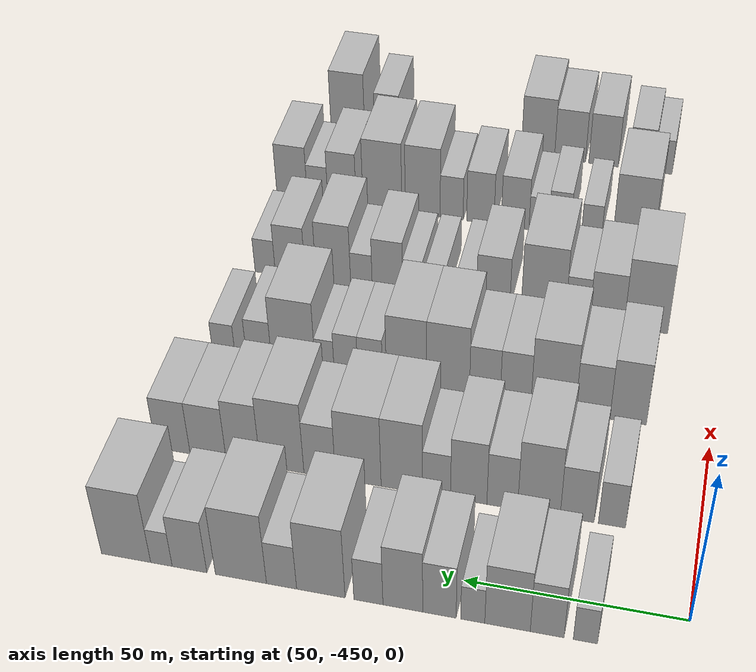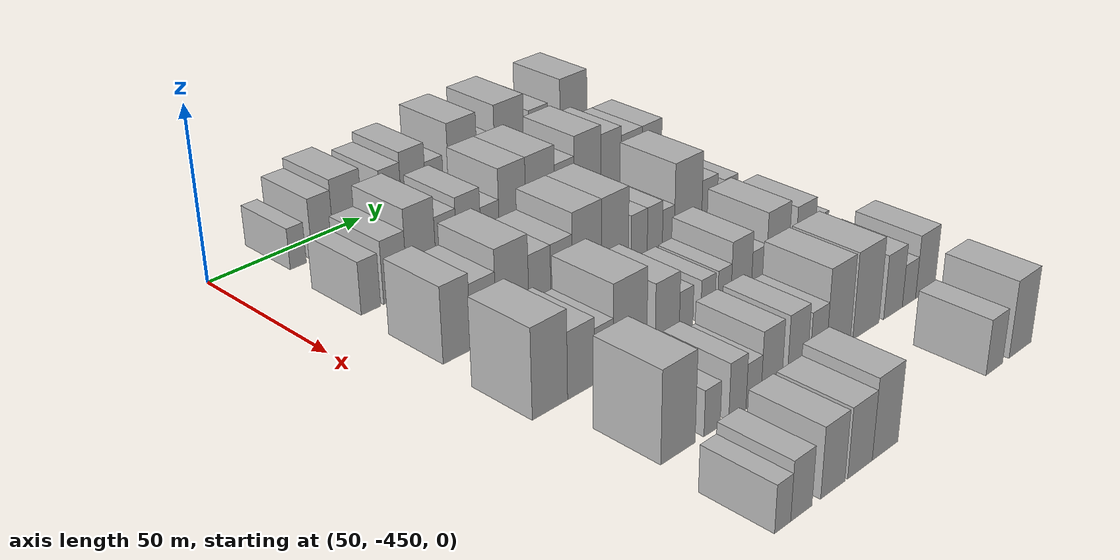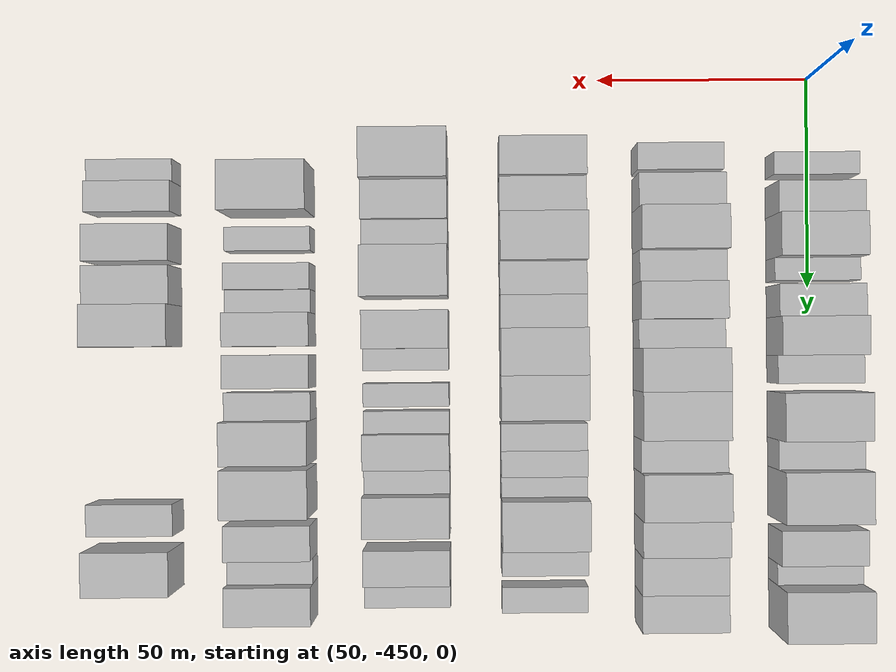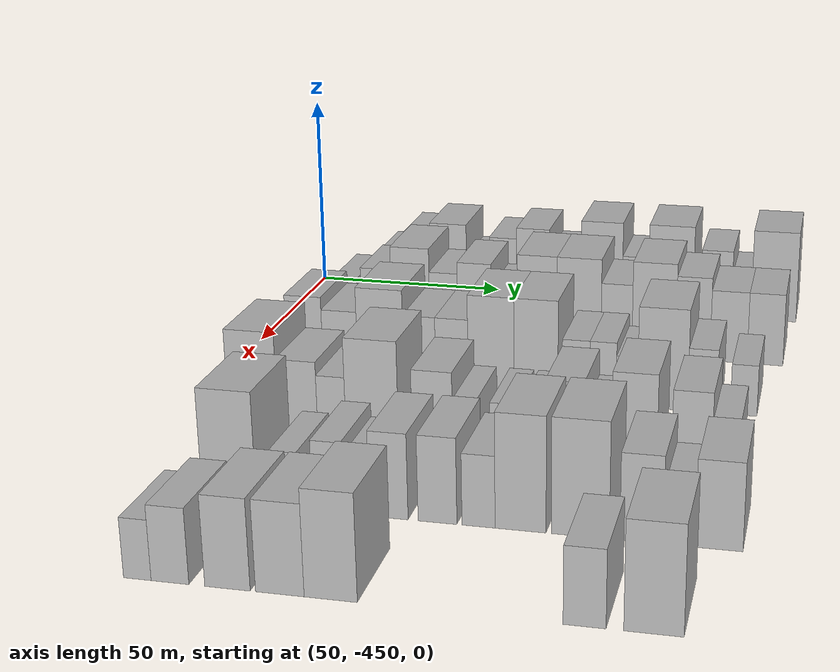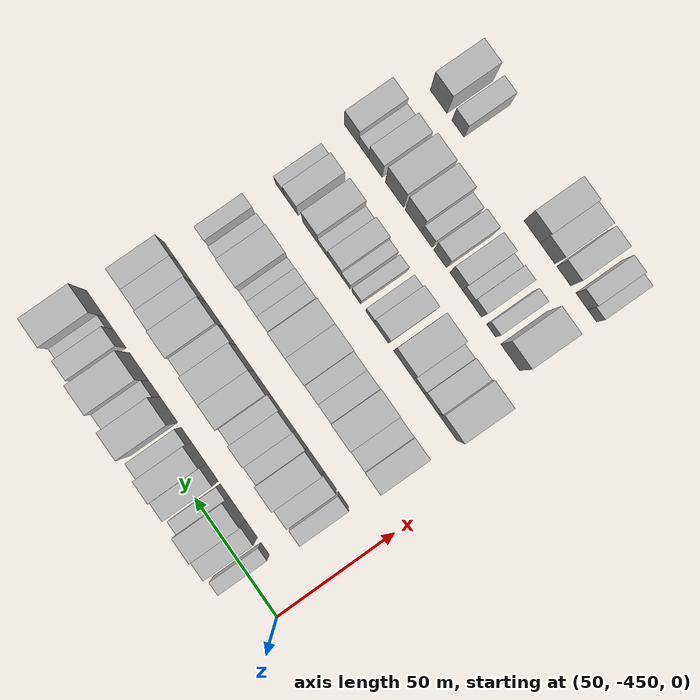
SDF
<sdf version="1.6">
 <world name="default">
  <model name="building_13">
   <static>1</static>
   <pose>50.0000 -428.5578 0 0.000000 0.000000 0.000000</pose>
   <link name="link">
    <pose>0 0 6.00 0 0 0</pose>
    <collision name="collision"><geometry><box><size>20.0000 5.2352 12.0000</size></box></geometry></collision>
    <visual name="visual">
     <cast_shadows>0</cast_shadows>
     <geometry><box><size>20.0000 5.2352 12.0000</size></box></geometry>
     <material>
      <script>
       <uri>model://HANNAS_wall/materials/scripts</uri>
       <uri>model://HANNAS_wall/materials/textures</uri>
       <name>vrc/HANNAS_wall</name>
      </script>
     </material>
    </visual>
   </link>
  </model>
  <model name="building_14">
   <static>1</static>
   <pose>50.0000 -420.2583 0 0.000000 0.000000 0.000000</pose>
   <link name="link">
    <pose>0 0 9.00 0 0 0</pose>
    <collision name="collision"><geometry><box><size>20.0000 7.3639 18.0000</size></box></geometry></collision>
    <visual name="visual">
     <cast_shadows>0</cast_shadows>
     <geometry><box><size>20.0000 7.3639 18.0000</size></box></geometry>
     <material>
      <script>
       <uri>model://HANNAS_wall/materials/scripts</uri>
       <uri>model://HANNAS_wall/materials/textures</uri>
       <name>vrc/HANNAS_wall</name>
      </script>
     </material>
    </visual>
   </link>
  </model>
  <model name="building_15">
   <static>1</static>
   <pose>50.0000 -411.5845 0 0.000000 0.000000 0.000000</pose>
   <link name="link">
    <pose>0 0 10.50 0 0 0</pose>
    <collision name="collision"><geometry><box><size>20.0000 9.9836 21.0000</size></box></geometry></collision>
    <visual name="visual">
     <cast_shadows>0</cast_shadows>
     <geometry><box><size>20.0000 9.9836 21.0000</size></box></geometry>
     <material>
      <script>
       <uri>model://HANNAS_wall/materials/scripts</uri>
       <uri>model://HANNAS_wall/materials/textures</uri>
       <name>vrc/HANNAS_wall</name>
      </script>
     </material>
    </visual>
   </link>
  </model>
  <model name="building_16">
   <static>1</static>
   <pose>50.0000 -403.9259 0 0.000000 0.000000 0.000000</pose>
   <link name="link">
    <pose>0 0 6.00 0 0 0</pose>
    <collision name="collision"><geometry><box><size>20.0000 5.3337 12.0000</size></box></geometry></collision>
    <visual name="visual">
     <cast_shadows>0</cast_shadows>
     <geometry><box><size>20.0000 5.3337 12.0000</size></box></geometry>
     <material>
      <script>
       <uri>model://HANNAS_wall/materials/scripts</uri>
       <uri>model://HANNAS_wall/materials/textures</uri>
       <name>vrc/HANNAS_wall</name>
      </script>
     </material>
    </visual>
   </link>
  </model>
  <model name="building_17">
   <static>1</static>
   <pose>50.0000 -396.5449 0 0.000000 0.000000 0.000000</pose>
   <link name="link">
    <pose>0 0 9.00 0 0 0</pose>
    <collision name="collision"><geometry><box><size>20.0000 7.4283 18.0000</size></box></geometry></collision>
    <visual name="visual">
     <cast_shadows>0</cast_shadows>
     <geometry><box><size>20.0000 7.4283 18.0000</size></box></geometry>
     <material>
      <script>
       <uri>model://HANNAS_wall/materials/scripts</uri>
       <uri>model://HANNAS_wall/materials/textures</uri>
       <name>vrc/HANNAS_wall</name>
      </script>
     </material>
    </visual>
   </link>
  </model>
  <model name="building_18">
   <static>1</static>
   <pose>50.0000 -388.3783 0 0.000000 0.000000 0.000000</pose>
   <link name="link">
    <pose>0 0 10.50 0 0 0</pose>
    <collision name="collision"><geometry><box><size>20.0000 8.9048 21.0000</size></box></geometry></collision>
    <visual name="visual">
     <cast_shadows>0</cast_shadows>
     <geometry><box><size>20.0000 8.9048 21.0000</size></box></geometry>
     <material>
      <script>
       <uri>model://HANNAS_wall/materials/scripts</uri>
       <uri>model://HANNAS_wall/materials/textures</uri>
       <name>vrc/HANNAS_wall</name>
      </script>
     </material>
    </visual>
   </link>
  </model>
  <model name="building_19">
   <static>1</static>
   <pose>50.0000 -380.6509 0 0.000000 0.000000 0.000000</pose>
   <link name="link">
    <pose>0 0 7.50 0 0 0</pose>
    <collision name="collision"><geometry><box><size>20.0000 6.5501 15.0000</size></box></geometry></collision>
    <visual name="visual">
     <cast_shadows>0</cast_shadows>
     <geometry><box><size>20.0000 6.5501 15.0000</size></box></geometry>
     <material>
      <script>
       <uri>model://HANNAS_wall/materials/scripts</uri>
       <uri>model://HANNAS_wall/materials/textures</uri>
       <name>vrc/HANNAS_wall</name>
      </script>
     </material>
    </visual>
   </link>
  </model>
  <model name="building_20">
   <static>1</static>
   <pose>50.0000 -369.8633 0 0.000000 0.000000 0.000000</pose>
   <link name="link">
    <pose>0 0 12.00 0 0 0</pose>
    <collision name="collision"><geometry><box><size>20.0000 11.0251 24.0000</size></box></geometry></collision>
    <visual name="visual">
     <cast_shadows>0</cast_shadows>
     <geometry><box><size>20.0000 11.0251 24.0000</size></box></geometry>
     <material>
      <script>
       <uri>model://HANNAS_wall/materials/scripts</uri>
       <uri>model://HANNAS_wall/materials/textures</uri>
       <name>vrc/HANNAS_wall</name>
      </script>
     </material>
    </visual>
   </link>
  </model>
  <model name="building_21">
   <static>1</static>
   <pose>50.0000 -360.8925 0 0.000000 0.000000 0.000000</pose>
   <link name="link">
    <pose>0 0 7.50 0 0 0</pose>
    <collision name="collision"><geometry><box><size>20.0000 6.9164 15.0000</size></box></geometry></collision>
    <visual name="visual">
     <cast_shadows>0</cast_shadows>
     <geometry><box><size>20.0000 6.9164 15.0000</size></box></geometry>
     <material>
      <script>
       <uri>model://HANNAS_wall/materials/scripts</uri>
       <uri>model://HANNAS_wall/materials/textures</uri>
       <name>vrc/HANNAS_wall</name>
      </script>
     </material>
    </visual>
   </link>
  </model>
  <model name="building_22">
   <static>1</static>
   <pose>50.0000 -351.5226 0 0.000000 0.000000 0.000000</pose>
   <link name="link">
    <pose>0 0 12.00 0 0 0</pose>
    <collision name="collision"><geometry><box><size>20.0000 11.8233 24.0000</size></box></geometry></collision>
    <visual name="visual">
     <cast_shadows>0</cast_shadows>
     <geometry><box><size>20.0000 11.8233 24.0000</size></box></geometry>
     <material>
      <script>
       <uri>model://HANNAS_wall/materials/scripts</uri>
       <uri>model://HANNAS_wall/materials/textures</uri>
       <name>vrc/HANNAS_wall</name>
      </script>
     </material>
    </visual>
   </link>
  </model>
  <model name="building_23">
   <static>1</static>
   <pose>50.0000 -339.5684 0 0.000000 0.000000 0.000000</pose>
   <link name="link">
    <pose>0 0 9.00 0 0 0</pose>
    <collision name="collision"><geometry><box><size>20.0000 8.0851 18.0000</size></box></geometry></collision>
    <visual name="visual">
     <cast_shadows>0</cast_shadows>
     <geometry><box><size>20.0000 8.0851 18.0000</size></box></geometry>
     <material>
      <script>
       <uri>model://HANNAS_wall/materials/scripts</uri>
       <uri>model://HANNAS_wall/materials/textures</uri>
       <name>vrc/HANNAS_wall</name>
      </script>
     </material>
    </visual>
   </link>
  </model>
  <model name="building_24">
   <static>1</static>
   <pose>50.0000 -332.9905 0 0.000000 0.000000 0.000000</pose>
   <link name="link">
    <pose>0 0 6.00 0 0 0</pose>
    <collision name="collision"><geometry><box><size>20.0000 5.0706 12.0000</size></box></geometry></collision>
    <visual name="visual">
     <cast_shadows>0</cast_shadows>
     <geometry><box><size>20.0000 5.0706 12.0000</size></box></geometry>
     <material>
      <script>
       <uri>model://HANNAS_wall/materials/scripts</uri>
       <uri>model://HANNAS_wall/materials/textures</uri>
       <name>vrc/HANNAS_wall</name>
      </script>
     </material>
    </visual>
   </link>
  </model>
  <model name="building_25">
   <static>1</static>
   <pose>50.0000 -324.6397 0 0.000000 0.000000 0.000000</pose>
   <link name="link">
    <pose>0 0 12.00 0 0 0</pose>
    <collision name="collision"><geometry><box><size>20.0000 11.6311 24.0000</size></box></geometry></collision>
    <visual name="visual">
     <cast_shadows>0</cast_shadows>
     <geometry><box><size>20.0000 11.6311 24.0000</size></box></geometry>
     <material>
      <script>
       <uri>model://HANNAS_wall/materials/scripts</uri>
       <uri>model://HANNAS_wall/materials/textures</uri>
       <name>vrc/HANNAS_wall</name>
      </script>
     </material>
    </visual>
   </link>
  </model>
  <model name="building_134">
   <static>1</static>
   <pose>82.0000 -430.1338 0 0.000000 0.000000 0.000000</pose>
   <link name="link">
    <pose>0 0 7.50 0 0 0</pose>
    <collision name="collision"><geometry><box><size>20.0000 6.2410 15.0000</size></box></geometry></collision>
    <visual name="visual">
     <cast_shadows>0</cast_shadows>
     <geometry><box><size>20.0000 6.2410 15.0000</size></box></geometry>
     <material>
      <script>
       <uri>model://HANNAS_wall/materials/scripts</uri>
       <uri>model://HANNAS_wall/materials/textures</uri>
       <name>vrc/HANNAS_wall</name>
      </script>
     </material>
    </visual>
   </link>
  </model>
  <model name="building_135">
   <static>1</static>
   <pose>82.0000 -422.0938 0 0.000000 0.000000 0.000000</pose>
   <link name="link">
    <pose>0 0 9.00 0 0 0</pose>
    <collision name="collision"><geometry><box><size>20.0000 7.8391 18.0000</size></box></geometry></collision>
    <visual name="visual">
     <cast_shadows>0</cast_shadows>
     <geometry><box><size>20.0000 7.8391 18.0000</size></box></geometry>
     <material>
      <script>
       <uri>model://HANNAS_wall/materials/scripts</uri>
       <uri>model://HANNAS_wall/materials/textures</uri>
       <name>vrc/HANNAS_wall</name>
      </script>
     </material>
    </visual>
   </link>
  </model>
  <model name="building_136">
   <static>1</static>
   <pose>82.0000 -413.2162 0 0.000000 0.000000 0.000000</pose>
   <link name="link">
    <pose>0 0 12.00 0 0 0</pose>
    <collision name="collision"><geometry><box><size>20.0000 9.9159 24.0000</size></box></geometry></collision>
    <visual name="visual">
     <cast_shadows>0</cast_shadows>
     <geometry><box><size>20.0000 9.9159 24.0000</size></box></geometry>
     <material>
      <script>
       <uri>model://HANNAS_wall/materials/scripts</uri>
       <uri>model://HANNAS_wall/materials/textures</uri>
       <name>vrc/HANNAS_wall</name>
      </script>
     </material>
    </visual>
   </link>
  </model>
  <model name="building_137">
   <static>1</static>
   <pose>82.0000 -404.6485 0 0.000000 0.000000 0.000000</pose>
   <link name="link">
    <pose>0 0 9.00 0 0 0</pose>
    <collision name="collision"><geometry><box><size>20.0000 7.2197 18.0000</size></box></geometry></collision>
    <visual name="visual">
     <cast_shadows>0</cast_shadows>
     <geometry><box><size>20.0000 7.2197 18.0000</size></box></geometry>
     <material>
      <script>
       <uri>model://HANNAS_wall/materials/scripts</uri>
       <uri>model://HANNAS_wall/materials/textures</uri>
       <name>vrc/HANNAS_wall</name>
      </script>
     </material>
    </visual>
   </link>
  </model>
  <model name="building_138">
   <static>1</static>
   <pose>82.0000 -396.7488 0 0.000000 0.000000 0.000000</pose>
   <link name="link">
    <pose>0 0 10.50 0 0 0</pose>
    <collision name="collision"><geometry><box><size>20.0000 8.5797 21.0000</size></box></geometry></collision>
    <visual name="visual">
     <cast_shadows>0</cast_shadows>
     <geometry><box><size>20.0000 8.5797 21.0000</size></box></geometry>
     <material>
      <script>
       <uri>model://HANNAS_wall/materials/scripts</uri>
       <uri>model://HANNAS_wall/materials/textures</uri>
       <name>vrc/HANNAS_wall</name>
      </script>
     </material>
    </visual>
   </link>
  </model>
  <model name="building_139">
   <static>1</static>
   <pose>82.0000 -389.1344 0 0.000000 0.000000 0.000000</pose>
   <link name="link">
    <pose>0 0 7.50 0 0 0</pose>
    <collision name="collision"><geometry><box><size>20.0000 6.6491 15.0000</size></box></geometry></collision>
    <visual name="visual">
     <cast_shadows>0</cast_shadows>
     <geometry><box><size>20.0000 6.6491 15.0000</size></box></geometry>
     <material>
      <script>
       <uri>model://HANNAS_wall/materials/scripts</uri>
       <uri>model://HANNAS_wall/materials/textures</uri>
       <name>vrc/HANNAS_wall</name>
      </script>
     </material>
    </visual>
   </link>
  </model>
  <model name="building_140">
   <static>1</static>
   <pose>82.0000 -380.8491 0 0.000000 0.000000 0.000000</pose>
   <link name="link">
    <pose>0 0 12.00 0 0 0</pose>
    <collision name="collision"><geometry><box><size>20.0000 9.9214 24.0000</size></box></geometry></collision>
    <visual name="visual">
     <cast_shadows>0</cast_shadows>
     <geometry><box><size>20.0000 9.9214 24.0000</size></box></geometry>
     <material>
      <script>
       <uri>model://HANNAS_wall/materials/scripts</uri>
       <uri>model://HANNAS_wall/materials/textures</uri>
       <name>vrc/HANNAS_wall</name>
      </script>
     </material>
    </visual>
   </link>
  </model>
  <model name="building_141">
   <static>1</static>
   <pose>82.0000 -370.3809 0 0.000000 0.000000 0.000000</pose>
   <link name="link">
    <pose>0 0 12.00 0 0 0</pose>
    <collision name="collision"><geometry><box><size>20.0000 11.0150 24.0000</size></box></geometry></collision>
    <visual name="visual">
     <cast_shadows>0</cast_shadows>
     <geometry><box><size>20.0000 11.0150 24.0000</size></box></geometry>
     <material>
      <script>
       <uri>model://HANNAS_wall/materials/scripts</uri>
       <uri>model://HANNAS_wall/materials/textures</uri>
       <name>vrc/HANNAS_wall</name>
      </script>
     </material>
    </visual>
   </link>
  </model>
  <model name="building_142">
   <static>1</static>
   <pose>82.0000 -361.0328 0 0.000000 0.000000 0.000000</pose>
   <link name="link">
    <pose>0 0 9.00 0 0 0</pose>
    <collision name="collision"><geometry><box><size>20.0000 7.6814 18.0000</size></box></geometry></collision>
    <visual name="visual">
     <cast_shadows>0</cast_shadows>
     <geometry><box><size>20.0000 7.6814 18.0000</size></box></geometry>
     <material>
      <script>
       <uri>model://HANNAS_wall/materials/scripts</uri>
       <uri>model://HANNAS_wall/materials/textures</uri>
       <name>vrc/HANNAS_wall</name>
      </script>
     </material>
    </visual>
   </link>
  </model>
  <model name="building_143">
   <static>1</static>
   <pose>82.0000 -351.8305 0 0.000000 0.000000 0.000000</pose>
   <link name="link">
    <pose>0 0 12.00 0 0 0</pose>
    <collision name="collision"><geometry><box><size>20.0000 10.7232 24.0000</size></box></geometry></collision>
    <visual name="visual">
     <cast_shadows>0</cast_shadows>
     <geometry><box><size>20.0000 10.7232 24.0000</size></box></geometry>
     <material>
      <script>
       <uri>model://HANNAS_wall/materials/scripts</uri>
       <uri>model://HANNAS_wall/materials/textures</uri>
       <name>vrc/HANNAS_wall</name>
      </script>
     </material>
    </visual>
   </link>
  </model>
  <model name="building_144">
   <static>1</static>
   <pose>82.0000 -342.2577 0 0.000000 0.000000 0.000000</pose>
   <link name="link">
    <pose>0 0 10.50 0 0 0</pose>
    <collision name="collision"><geometry><box><size>20.0000 8.4223 21.0000</size></box></geometry></collision>
    <visual name="visual">
     <cast_shadows>0</cast_shadows>
     <geometry><box><size>20.0000 8.4223 21.0000</size></box></geometry>
     <material>
      <script>
       <uri>model://HANNAS_wall/materials/scripts</uri>
       <uri>model://HANNAS_wall/materials/textures</uri>
       <name>vrc/HANNAS_wall</name>
      </script>
     </material>
    </visual>
   </link>
  </model>
  <model name="building_145">
   <static>1</static>
   <pose>82.0000 -333.5555 0 0.000000 0.000000 0.000000</pose>
   <link name="link">
    <pose>0 0 9.00 0 0 0</pose>
    <collision name="collision"><geometry><box><size>20.0000 8.9820 18.0000</size></box></geometry></collision>
    <visual name="visual">
     <cast_shadows>0</cast_shadows>
     <geometry><box><size>20.0000 8.9820 18.0000</size></box></geometry>
     <material>
      <script>
       <uri>model://HANNAS_wall/materials/scripts</uri>
       <uri>model://HANNAS_wall/materials/textures</uri>
       <name>vrc/HANNAS_wall</name>
      </script>
     </material>
    </visual>
   </link>
  </model>
  <model name="building_146">
   <static>1</static>
   <pose>82.0000 -324.7815 0 0.000000 0.000000 0.000000</pose>
   <link name="link">
    <pose>0 0 9.00 0 0 0</pose>
    <collision name="collision"><geometry><box><size>20.0000 8.5660 18.0000</size></box></geometry></collision>
    <visual name="visual">
     <cast_shadows>0</cast_shadows>
     <geometry><box><size>20.0000 8.5660 18.0000</size></box></geometry>
     <material>
      <script>
       <uri>model://HANNAS_wall/materials/scripts</uri>
       <uri>model://HANNAS_wall/materials/textures</uri>
       <name>vrc/HANNAS_wall</name>
      </script>
     </material>
    </visual>
   </link>
  </model>
  <model name="building_246">
   <static>1</static>
   <pose>114.0000 -429.9418 0 0.000000 0.000000 0.000000</pose>
   <link name="link">
    <pose>0 0 10.50 0 0 0</pose>
    <collision name="collision"><geometry><box><size>20.0000 8.8962 21.0000</size></box></geometry></collision>
    <visual name="visual">
     <cast_shadows>0</cast_shadows>
     <geometry><box><size>20.0000 8.8962 21.0000</size></box></geometry>
     <material>
      <script>
       <uri>model://HANNAS_wall/materials/scripts</uri>
       <uri>model://HANNAS_wall/materials/textures</uri>
       <name>vrc/HANNAS_wall</name>
      </script>
     </material>
    </visual>
   </link>
  </model>
  <model name="building_247">
   <static>1</static>
   <pose>114.0000 -421.2782 0 0.000000 0.000000 0.000000</pose>
   <link name="link">
    <pose>0 0 9.00 0 0 0</pose>
    <collision name="collision"><geometry><box><size>20.0000 8.4309 18.0000</size></box></geometry></collision>
    <visual name="visual">
     <cast_shadows>0</cast_shadows>
     <geometry><box><size>20.0000 8.4309 18.0000</size></box></geometry>
     <material>
      <script>
       <uri>model://HANNAS_wall/materials/scripts</uri>
       <uri>model://HANNAS_wall/materials/textures</uri>
       <name>vrc/HANNAS_wall</name>
      </script>
     </material>
    </visual>
   </link>
  </model>
  <model name="building_248">
   <static>1</static>
   <pose>114.0000 -411.5309 0 0.000000 0.000000 0.000000</pose>
   <link name="link">
    <pose>0 0 12.00 0 0 0</pose>
    <collision name="collision"><geometry><box><size>20.0000 11.0636 24.0000</size></box></geometry></collision>
    <visual name="visual">
     <cast_shadows>0</cast_shadows>
     <geometry><box><size>20.0000 11.0636 24.0000</size></box></geometry>
     <material>
      <script>
       <uri>model://HANNAS_wall/materials/scripts</uri>
       <uri>model://HANNAS_wall/materials/textures</uri>
       <name>vrc/HANNAS_wall</name>
      </script>
     </material>
    </visual>
   </link>
  </model>
  <model name="building_249">
   <static>1</static>
   <pose>114.0000 -402.1716 0 0.000000 0.000000 0.000000</pose>
   <link name="link">
    <pose>0 0 9.00 0 0 0</pose>
    <collision name="collision"><geometry><box><size>20.0000 7.6552 18.0000</size></box></geometry></collision>
    <visual name="visual">
     <cast_shadows>0</cast_shadows>
     <geometry><box><size>20.0000 7.6552 18.0000</size></box></geometry>
     <material>
      <script>
       <uri>model://HANNAS_wall/materials/scripts</uri>
       <uri>model://HANNAS_wall/materials/textures</uri>
       <name>vrc/HANNAS_wall</name>
      </script>
     </material>
    </visual>
   </link>
  </model>
  <model name="building_250">
   <static>1</static>
   <pose>114.0000 -394.4934 0 0.000000 0.000000 0.000000</pose>
   <link name="link">
    <pose>0 0 9.00 0 0 0</pose>
    <collision name="collision"><geometry><box><size>20.0000 7.7012 18.0000</size></box></geometry></collision>
    <visual name="visual">
     <cast_shadows>0</cast_shadows>
     <geometry><box><size>20.0000 7.7012 18.0000</size></box></geometry>
     <material>
      <script>
       <uri>model://HANNAS_wall/materials/scripts</uri>
       <uri>model://HANNAS_wall/materials/textures</uri>
       <name>vrc/HANNAS_wall</name>
      </script>
     </material>
    </visual>
   </link>
  </model>
  <model name="building_251">
   <static>1</static>
   <pose>114.0000 -385.2556 0 0.000000 0.000000 0.000000</pose>
   <link name="link">
    <pose>0 0 12.00 0 0 0</pose>
    <collision name="collision"><geometry><box><size>20.0000 10.7744 24.0000</size></box></geometry></collision>
    <visual name="visual">
     <cast_shadows>0</cast_shadows>
     <geometry><box><size>20.0000 10.7744 24.0000</size></box></geometry>
     <material>
      <script>
       <uri>model://HANNAS_wall/materials/scripts</uri>
       <uri>model://HANNAS_wall/materials/textures</uri>
       <name>vrc/HANNAS_wall</name>
      </script>
     </material>
    </visual>
   </link>
  </model>
  <model name="building_252">
   <static>1</static>
   <pose>114.0000 -374.7571 0 0.000000 0.000000 0.000000</pose>
   <link name="link">
    <pose>0 0 12.00 0 0 0</pose>
    <collision name="collision"><geometry><box><size>20.0000 10.2227 24.0000</size></box></geometry></collision>
    <visual name="visual">
     <cast_shadows>0</cast_shadows>
     <geometry><box><size>20.0000 10.2227 24.0000</size></box></geometry>
     <material>
      <script>
       <uri>model://HANNAS_wall/materials/scripts</uri>
       <uri>model://HANNAS_wall/materials/textures</uri>
       <name>vrc/HANNAS_wall</name>
      </script>
     </material>
    </visual>
   </link>
  </model>
  <model name="building_253">
   <static>1</static>
   <pose>114.0000 -365.4785 0 0.000000 0.000000 0.000000</pose>
   <link name="link">
    <pose>0 0 7.50 0 0 0</pose>
    <collision name="collision"><geometry><box><size>20.0000 6.3346 15.0000</size></box></geometry></collision>
    <visual name="visual">
     <cast_shadows>0</cast_shadows>
     <geometry><box><size>20.0000 6.3346 15.0000</size></box></geometry>
     <material>
      <script>
       <uri>model://HANNAS_wall/materials/scripts</uri>
       <uri>model://HANNAS_wall/materials/textures</uri>
       <name>vrc/HANNAS_wall</name>
      </script>
     </material>
    </visual>
   </link>
  </model>
  <model name="building_254">
   <static>1</static>
   <pose>114.0000 -359.2724 0 0.000000 0.000000 0.000000</pose>
   <link name="link">
    <pose>0 0 7.50 0 0 0</pose>
    <collision name="collision"><geometry><box><size>20.0000 6.0777 15.0000</size></box></geometry></collision>
    <visual name="visual">
     <cast_shadows>0</cast_shadows>
     <geometry><box><size>20.0000 6.0777 15.0000</size></box></geometry>
     <material>
      <script>
       <uri>model://HANNAS_wall/materials/scripts</uri>
       <uri>model://HANNAS_wall/materials/textures</uri>
       <name>vrc/HANNAS_wall</name>
      </script>
     </material>
    </visual>
   </link>
  </model>
  <model name="building_255">
   <static>1</static>
   <pose>114.0000 -353.8077 0 0.000000 0.000000 0.000000</pose>
   <link name="link">
    <pose>0 0 6.00 0 0 0</pose>
    <collision name="collision"><geometry><box><size>20.0000 4.8516 12.0000</size></box></geometry></collision>
    <visual name="visual">
     <cast_shadows>0</cast_shadows>
     <geometry><box><size>20.0000 4.8516 12.0000</size></box></geometry>
     <material>
      <script>
       <uri>model://HANNAS_wall/materials/scripts</uri>
       <uri>model://HANNAS_wall/materials/textures</uri>
       <name>vrc/HANNAS_wall</name>
      </script>
     </material>
    </visual>
   </link>
  </model>
  <model name="building_256">
   <static>1</static>
   <pose>114.0000 -345.6986 0 0.000000 0.000000 0.000000</pose>
   <link name="link">
    <pose>0 0 12.00 0 0 0</pose>
    <collision name="collision"><geometry><box><size>20.0000 11.3665 24.0000</size></box></geometry></collision>
    <visual name="visual">
     <cast_shadows>0</cast_shadows>
     <geometry><box><size>20.0000 11.3665 24.0000</size></box></geometry>
     <material>
      <script>
       <uri>model://HANNAS_wall/materials/scripts</uri>
       <uri>model://HANNAS_wall/materials/textures</uri>
       <name>vrc/HANNAS_wall</name>
      </script>
     </material>
    </visual>
   </link>
  </model>
  <model name="building_257">
   <static>1</static>
   <pose>114.0000 -336.7356 0 0.000000 0.000000 0.000000</pose>
   <link name="link">
    <pose>0 0 7.50 0 0 0</pose>
    <collision name="collision"><geometry><box><size>20.0000 6.5595 15.0000</size></box></geometry></collision>
    <visual name="visual">
     <cast_shadows>0</cast_shadows>
     <geometry><box><size>20.0000 6.5595 15.0000</size></box></geometry>
     <material>
      <script>
       <uri>model://HANNAS_wall/materials/scripts</uri>
       <uri>model://HANNAS_wall/materials/textures</uri>
       <name>vrc/HANNAS_wall</name>
      </script>
     </material>
    </visual>
   </link>
  </model>
  <model name="building_258">
   <static>1</static>
   <pose>114.0000 -327.4926 0 0.000000 0.000000 0.000000</pose>
   <link name="link">
    <pose>0 0 6.00 0 0 0</pose>
    <collision name="collision"><geometry><box><size>20.0000 5.9265 12.0000</size></box></geometry></collision>
    <visual name="visual">
     <cast_shadows>0</cast_shadows>
     <geometry><box><size>20.0000 5.9265 12.0000</size></box></geometry>
     <material>
      <script>
       <uri>model://HANNAS_wall/materials/scripts</uri>
       <uri>model://HANNAS_wall/materials/textures</uri>
       <name>vrc/HANNAS_wall</name>
      </script>
     </material>
    </visual>
   </link>
  </model>
  <model name="building_367">
   <static>1</static>
   <pose>146.0000 -430.6050 0 0.000000 0.000000 0.000000</pose>
   <link name="link">
    <pose>0 0 12.00 0 0 0</pose>
    <collision name="collision"><geometry><box><size>20.0000 11.2582 24.0000</size></box></geometry></collision>
    <visual name="visual">
     <cast_shadows>0</cast_shadows>
     <geometry><box><size>20.0000 11.2582 24.0000</size></box></geometry>
     <material>
      <script>
       <uri>model://HANNAS_wall/materials/scripts</uri>
       <uri>model://HANNAS_wall/materials/textures</uri>
       <name>vrc/HANNAS_wall</name>
      </script>
     </material>
    </visual>
   </link>
  </model>
  <model name="building_368">
   <static>1</static>
   <pose>146.0000 -420.4940 0 0.000000 0.000000 0.000000</pose>
   <link name="link">
    <pose>0 0 9.00 0 0 0</pose>
    <collision name="collision"><geometry><box><size>20.0000 8.9637 18.0000</size></box></geometry></collision>
    <visual name="visual">
     <cast_shadows>0</cast_shadows>
     <geometry><box><size>20.0000 8.9637 18.0000</size></box></geometry>
     <material>
      <script>
       <uri>model://HANNAS_wall/materials/scripts</uri>
       <uri>model://HANNAS_wall/materials/textures</uri>
       <name>vrc/HANNAS_wall</name>
      </script>
     </material>
    </visual>
   </link>
  </model>
  <model name="building_369">
   <static>1</static>
   <pose>146.0000 -412.8617 0 0.000000 0.000000 0.000000</pose>
   <link name="link">
    <pose>0 0 7.50 0 0 0</pose>
    <collision name="collision"><geometry><box><size>20.0000 6.3010 15.0000</size></box></geometry></collision>
    <visual name="visual">
     <cast_shadows>0</cast_shadows>
     <geometry><box><size>20.0000 6.3010 15.0000</size></box></geometry>
     <material>
      <script>
       <uri>model://HANNAS_wall/materials/scripts</uri>
       <uri>model://HANNAS_wall/materials/textures</uri>
       <name>vrc/HANNAS_wall</name>
      </script>
     </material>
    </visual>
   </link>
  </model>
  <model name="building_370">
   <static>1</static>
   <pose>146.0000 -403.8856 0 0.000000 0.000000 0.000000</pose>
   <link name="link">
    <pose>0 0 12.00 0 0 0</pose>
    <collision name="collision"><geometry><box><size>20.0000 11.6511 24.0000</size></box></geometry></collision>
    <visual name="visual">
     <cast_shadows>0</cast_shadows>
     <geometry><box><size>20.0000 11.6511 24.0000</size></box></geometry>
     <material>
      <script>
       <uri>model://HANNAS_wall/materials/scripts</uri>
       <uri>model://HANNAS_wall/materials/textures</uri>
       <name>vrc/HANNAS_wall</name>
      </script>
     </material>
    </visual>
   </link>
  </model>
  <model name="building_371">
   <static>1</static>
   <pose>146.0000 -390.6459 0 0.000000 0.000000 0.000000</pose>
   <link name="link">
    <pose>0 0 9.00 0 0 0</pose>
    <collision name="collision"><geometry><box><size>20.0000 8.8284 18.0000</size></box></geometry></collision>
    <visual name="visual">
     <cast_shadows>0</cast_shadows>
     <geometry><box><size>20.0000 8.8284 18.0000</size></box></geometry>
     <material>
      <script>
       <uri>model://HANNAS_wall/materials/scripts</uri>
       <uri>model://HANNAS_wall/materials/textures</uri>
       <name>vrc/HANNAS_wall</name>
      </script>
     </material>
    </visual>
   </link>
  </model>
  <model name="building_372">
   <static>1</static>
   <pose>146.0000 -383.6911 0 0.000000 0.000000 0.000000</pose>
   <link name="link">
    <pose>0 0 6.00 0 0 0</pose>
    <collision name="collision"><geometry><box><size>20.0000 5.0814 12.0000</size></box></geometry></collision>
    <visual name="visual">
     <cast_shadows>0</cast_shadows>
     <geometry><box><size>20.0000 5.0814 12.0000</size></box></geometry>
     <material>
      <script>
       <uri>model://HANNAS_wall/materials/scripts</uri>
       <uri>model://HANNAS_wall/materials/textures</uri>
       <name>vrc/HANNAS_wall</name>
      </script>
     </material>
    </visual>
   </link>
  </model>
  <model name="building_373">
   <static>1</static>
   <pose>146.0000 -375.4242 0 0.000000 0.000000 0.000000</pose>
   <link name="link">
    <pose>0 0 6.00 0 0 0</pose>
    <collision name="collision"><geometry><box><size>20.0000 5.4524 12.0000</size></box></geometry></collision>
    <visual name="visual">
     <cast_shadows>0</cast_shadows>
     <geometry><box><size>20.0000 5.4524 12.0000</size></box></geometry>
     <material>
      <script>
       <uri>model://HANNAS_wall/materials/scripts</uri>
       <uri>model://HANNAS_wall/materials/textures</uri>
       <name>vrc/HANNAS_wall</name>
      </script>
     </material>
    </visual>
   </link>
  </model>
  <model name="building_374">
   <static>1</static>
   <pose>146.0000 -369.0736 0 0.000000 0.000000 0.000000</pose>
   <link name="link">
    <pose>0 0 6.00 0 0 0</pose>
    <collision name="collision"><geometry><box><size>20.0000 5.2488 12.0000</size></box></geometry></collision>
    <visual name="visual">
     <cast_shadows>0</cast_shadows>
     <geometry><box><size>20.0000 5.2488 12.0000</size></box></geometry>
     <material>
      <script>
       <uri>model://HANNAS_wall/materials/scripts</uri>
       <uri>model://HANNAS_wall/materials/textures</uri>
       <name>vrc/HANNAS_wall</name>
      </script>
     </material>
    </visual>
   </link>
  </model>
  <model name="building_375">
   <static>1</static>
   <pose>146.0000 -362.3347 0 0.000000 0.000000 0.000000</pose>
   <link name="link">
    <pose>0 0 9.00 0 0 0</pose>
    <collision name="collision"><geometry><box><size>20.0000 8.2289 18.0000</size></box></geometry></collision>
    <visual name="visual">
     <cast_shadows>0</cast_shadows>
     <geometry><box><size>20.0000 8.2289 18.0000</size></box></geometry>
     <material>
      <script>
       <uri>model://HANNAS_wall/materials/scripts</uri>
       <uri>model://HANNAS_wall/materials/textures</uri>
       <name>vrc/HANNAS_wall</name>
      </script>
     </material>
    </visual>
   </link>
  </model>
  <model name="building_376">
   <static>1</static>
   <pose>146.0000 -355.2897 0 0.000000 0.000000 0.000000</pose>
   <link name="link">
    <pose>0 0 6.00 0 0 0</pose>
    <collision name="collision"><geometry><box><size>20.0000 5.8612 12.0000</size></box></geometry></collision>
    <visual name="visual">
     <cast_shadows>0</cast_shadows>
     <geometry><box><size>20.0000 5.8612 12.0000</size></box></geometry>
     <material>
      <script>
       <uri>model://HANNAS_wall/materials/scripts</uri>
       <uri>model://HANNAS_wall/materials/textures</uri>
       <name>vrc/HANNAS_wall</name>
      </script>
     </material>
    </visual>
   </link>
  </model>
  <model name="building_377">
   <static>1</static>
   <pose>146.0000 -347.6296 0 0.000000 0.000000 0.000000</pose>
   <link name="link">
    <pose>0 0 10.50 0 0 0</pose>
    <collision name="collision"><geometry><box><size>20.0000 9.4590 21.0000</size></box></geometry></collision>
    <visual name="visual">
     <cast_shadows>0</cast_shadows>
     <geometry><box><size>20.0000 9.4590 21.0000</size></box></geometry>
     <material>
      <script>
       <uri>model://HANNAS_wall/materials/scripts</uri>
       <uri>model://HANNAS_wall/materials/textures</uri>
       <name>vrc/HANNAS_wall</name>
      </script>
     </material>
    </visual>
   </link>
  </model>
  <model name="building_378">
   <static>1</static>
   <pose>146.0000 -335.7677 0 0.000000 0.000000 0.000000</pose>
   <link name="link">
    <pose>0 0 9.00 0 0 0</pose>
    <collision name="collision"><geometry><box><size>20.0000 8.2648 18.0000</size></box></geometry></collision>
    <visual name="visual">
     <cast_shadows>0</cast_shadows>
     <geometry><box><size>20.0000 8.2648 18.0000</size></box></geometry>
     <material>
      <script>
       <uri>model://HANNAS_wall/materials/scripts</uri>
       <uri>model://HANNAS_wall/materials/textures</uri>
       <name>vrc/HANNAS_wall</name>
      </script>
     </material>
    </visual>
   </link>
  </model>
  <model name="building_379">
   <static>1</static>
   <pose>146.0000 -328.8096 0 0.000000 0.000000 0.000000</pose>
   <link name="link">
    <pose>0 0 6.00 0 0 0</pose>
    <collision name="collision"><geometry><box><size>20.0000 5.6514 12.0000</size></box></geometry></collision>
    <visual name="visual">
     <cast_shadows>0</cast_shadows>
     <geometry><box><size>20.0000 5.6514 12.0000</size></box></geometry>
     <material>
      <script>
       <uri>model://HANNAS_wall/materials/scripts</uri>
       <uri>model://HANNAS_wall/materials/textures</uri>
       <name>vrc/HANNAS_wall</name>
      </script>
     </material>
    </visual>
   </link>
  </model>
  <model name="building_488">
   <static>1</static>
   <pose>178.0000 -423.4859 0 0.000000 0.000000 0.000000</pose>
   <link name="link">
    <pose>0 0 12.00 0 0 0</pose>
    <collision name="collision"><geometry><box><size>20.0000 11.2924 24.0000</size></box></geometry></collision>
    <visual name="visual">
     <cast_shadows>0</cast_shadows>
     <geometry><box><size>20.0000 11.2924 24.0000</size></box></geometry>
     <material>
      <script>
       <uri>model://HANNAS_wall/materials/scripts</uri>
       <uri>model://HANNAS_wall/materials/textures</uri>
       <name>vrc/HANNAS_wall</name>
      </script>
     </material>
    </visual>
   </link>
  </model>
  <model name="building_489">
   <static>1</static>
   <pose>178.0000 -412.0562 0 0.000000 0.000000 0.000000</pose>
   <link name="link">
    <pose>0 0 6.00 0 0 0</pose>
    <collision name="collision"><geometry><box><size>20.0000 5.5670 12.0000</size></box></geometry></collision>
    <visual name="visual">
     <cast_shadows>0</cast_shadows>
     <geometry><box><size>20.0000 5.5670 12.0000</size></box></geometry>
     <material>
      <script>
       <uri>model://HANNAS_wall/materials/scripts</uri>
       <uri>model://HANNAS_wall/materials/textures</uri>
       <name>vrc/HANNAS_wall</name>
      </script>
     </material>
    </visual>
   </link>
  </model>
  <model name="building_490">
   <static>1</static>
   <pose>178.0000 -403.2145 0 0.000000 0.000000 0.000000</pose>
   <link name="link">
    <pose>0 0 7.50 0 0 0</pose>
    <collision name="collision"><geometry><box><size>20.0000 6.1164 15.0000</size></box></geometry></collision>
    <visual name="visual">
     <cast_shadows>0</cast_shadows>
     <geometry><box><size>20.0000 6.1164 15.0000</size></box></geometry>
     <material>
      <script>
       <uri>model://HANNAS_wall/materials/scripts</uri>
       <uri>model://HANNAS_wall/materials/textures</uri>
       <name>vrc/HANNAS_wall</name>
      </script>
     </material>
    </visual>
   </link>
  </model>
  <model name="building_491">
   <static>1</static>
   <pose>178.0000 -397.4584 0 0.000000 0.000000 0.000000</pose>
   <link name="link">
    <pose>0 0 6.00 0 0 0</pose>
    <collision name="collision"><geometry><box><size>20.0000 5.3957 12.0000</size></box></geometry></collision>
    <visual name="visual">
     <cast_shadows>0</cast_shadows>
     <geometry><box><size>20.0000 5.3957 12.0000</size></box></geometry>
     <material>
      <script>
       <uri>model://HANNAS_wall/materials/scripts</uri>
       <uri>model://HANNAS_wall/materials/textures</uri>
       <name>vrc/HANNAS_wall</name>
      </script>
     </material>
    </visual>
   </link>
  </model>
  <model name="building_492">
   <static>1</static>
   <pose>178.0000 -390.8823 0 0.000000 0.000000 0.000000</pose>
   <link name="link">
    <pose>0 0 9.00 0 0 0</pose>
    <collision name="collision"><geometry><box><size>20.0000 7.7565 18.0000</size></box></geometry></collision>
    <visual name="visual">
     <cast_shadows>0</cast_shadows>
     <geometry><box><size>20.0000 7.7565 18.0000</size></box></geometry>
     <material>
      <script>
       <uri>model://HANNAS_wall/materials/scripts</uri>
       <uri>model://HANNAS_wall/materials/textures</uri>
       <name>vrc/HANNAS_wall</name>
      </script>
     </material>
    </visual>
   </link>
  </model>
  <model name="building_493">
   <static>1</static>
   <pose>178.0000 -381.1577 0 0.000000 0.000000 0.000000</pose>
   <link name="link">
    <pose>0 0 9.00 0 0 0</pose>
    <collision name="collision"><geometry><box><size>20.0000 7.6927 18.0000</size></box></geometry></collision>
    <visual name="visual">
     <cast_shadows>0</cast_shadows>
     <geometry><box><size>20.0000 7.6927 18.0000</size></box></geometry>
     <material>
      <script>
       <uri>model://HANNAS_wall/materials/scripts</uri>
       <uri>model://HANNAS_wall/materials/textures</uri>
       <name>vrc/HANNAS_wall</name>
      </script>
     </material>
    </visual>
   </link>
  </model>
  <model name="building_494">
   <static>1</static>
   <pose>178.0000 -373.0614 0 0.000000 0.000000 0.000000</pose>
   <link name="link">
    <pose>0 0 7.50 0 0 0</pose>
    <collision name="collision"><geometry><box><size>20.0000 6.4999 15.0000</size></box></geometry></collision>
    <visual name="visual">
     <cast_shadows>0</cast_shadows>
     <geometry><box><size>20.0000 6.4999 15.0000</size></box></geometry>
     <material>
      <script>
       <uri>model://HANNAS_wall/materials/scripts</uri>
       <uri>model://HANNAS_wall/materials/textures</uri>
       <name>vrc/HANNAS_wall</name>
      </script>
     </material>
    </visual>
   </link>
  </model>
  <model name="building_495">
   <static>1</static>
   <pose>178.0000 -364.8626 0 0.000000 0.000000 0.000000</pose>
   <link name="link">
    <pose>0 0 12.00 0 0 0</pose>
    <collision name="collision"><geometry><box><size>20.0000 9.8977 24.0000</size></box></geometry></collision>
    <visual name="visual">
     <cast_shadows>0</cast_shadows>
     <geometry><box><size>20.0000 9.8977 24.0000</size></box></geometry>
     <material>
      <script>
       <uri>model://HANNAS_wall/materials/scripts</uri>
       <uri>model://HANNAS_wall/materials/textures</uri>
       <name>vrc/HANNAS_wall</name>
      </script>
     </material>
    </visual>
   </link>
  </model>
  <model name="building_496">
   <static>1</static>
   <pose>178.0000 -353.3572 0 0.000000 0.000000 0.000000</pose>
   <link name="link">
    <pose>0 0 12.00 0 0 0</pose>
    <collision name="collision"><geometry><box><size>20.0000 11.1131 24.0000</size></box></geometry></collision>
    <visual name="visual">
     <cast_shadows>0</cast_shadows>
     <geometry><box><size>20.0000 11.1131 24.0000</size></box></geometry>
     <material>
      <script>
       <uri>model://HANNAS_wall/materials/scripts</uri>
       <uri>model://HANNAS_wall/materials/textures</uri>
       <name>vrc/HANNAS_wall</name>
      </script>
     </material>
    </visual>
   </link>
  </model>
  <model name="building_497">
   <static>1</static>
   <pose>178.0000 -341.7064 0 0.000000 0.000000 0.000000</pose>
   <link name="link">
    <pose>0 0 9.00 0 0 0</pose>
    <collision name="collision"><geometry><box><size>20.0000 8.1884 18.0000</size></box></geometry></collision>
    <visual name="visual">
     <cast_shadows>0</cast_shadows>
     <geometry><box><size>20.0000 8.1884 18.0000</size></box></geometry>
     <material>
      <script>
       <uri>model://HANNAS_wall/materials/scripts</uri>
       <uri>model://HANNAS_wall/materials/textures</uri>
       <name>vrc/HANNAS_wall</name>
      </script>
     </material>
    </visual>
   </link>
  </model>
  <model name="building_498">
   <static>1</static>
   <pose>178.0000 -334.6275 0 0.000000 0.000000 0.000000</pose>
   <link name="link">
    <pose>0 0 6.00 0 0 0</pose>
    <collision name="collision"><geometry><box><size>20.0000 5.9695 12.0000</size></box></geometry></collision>
    <visual name="visual">
     <cast_shadows>0</cast_shadows>
     <geometry><box><size>20.0000 5.9695 12.0000</size></box></geometry>
     <material>
      <script>
       <uri>model://HANNAS_wall/materials/scripts</uri>
       <uri>model://HANNAS_wall/materials/textures</uri>
       <name>vrc/HANNAS_wall</name>
      </script>
     </material>
    </visual>
   </link>
  </model>
  <model name="building_499">
   <static>1</static>
   <pose>178.0000 -327.2067 0 0.000000 0.000000 0.000000</pose>
   <link name="link">
    <pose>0 0 9.00 0 0 0</pose>
    <collision name="collision"><geometry><box><size>20.0000 8.8721 18.0000</size></box></geometry></collision>
    <visual name="visual">
     <cast_shadows>0</cast_shadows>
     <geometry><box><size>20.0000 8.8721 18.0000</size></box></geometry>
     <material>
      <script>
       <uri>model://HANNAS_wall/materials/scripts</uri>
       <uri>model://HANNAS_wall/materials/textures</uri>
       <name>vrc/HANNAS_wall</name>
      </script>
     </material>
    </visual>
   </link>
  </model>
  <model name="building_612">
   <static>1</static>
   <pose>210.0000 -428.2105 0 0.000000 0.000000 0.000000</pose>
   <link name="link">
    <pose>0 0 6.00 0 0 0</pose>
    <collision name="collision"><geometry><box><size>20.0000 5.2898 12.0000</size></box></geometry></collision>
    <visual name="visual">
     <cast_shadows>0</cast_shadows>
     <geometry><box><size>20.0000 5.2898 12.0000</size></box></geometry>
     <material>
      <script>
       <uri>model://HANNAS_wall/materials/scripts</uri>
       <uri>model://HANNAS_wall/materials/textures</uri>
       <name>vrc/HANNAS_wall</name>
      </script>
     </material>
    </visual>
   </link>
  </model>
  <model name="building_613">
   <static>1</static>
   <pose>210.0000 -421.9744 0 0.000000 0.000000 0.000000</pose>
   <link name="link">
    <pose>0 0 7.50 0 0 0</pose>
    <collision name="collision"><geometry><box><size>20.0000 7.1825 15.0000</size></box></geometry></collision>
    <visual name="visual">
     <cast_shadows>0</cast_shadows>
     <geometry><box><size>20.0000 7.1825 15.0000</size></box></geometry>
     <material>
      <script>
       <uri>model://HANNAS_wall/materials/scripts</uri>
       <uri>model://HANNAS_wall/materials/textures</uri>
       <name>vrc/HANNAS_wall</name>
      </script>
     </material>
    </visual>
   </link>
  </model>
  <model name="building_614">
   <static>1</static>
   <pose>210.0000 -411.1229 0 0.000000 0.000000 0.000000</pose>
   <link name="link">
    <pose>0 0 9.00 0 0 0</pose>
    <collision name="collision"><geometry><box><size>20.0000 8.5205 18.0000</size></box></geometry></collision>
    <visual name="visual">
     <cast_shadows>0</cast_shadows>
     <geometry><box><size>20.0000 8.5205 18.0000</size></box></geometry>
     <material>
      <script>
       <uri>model://HANNAS_wall/materials/scripts</uri>
       <uri>model://HANNAS_wall/materials/textures</uri>
       <name>vrc/HANNAS_wall</name>
      </script>
     </material>
    </visual>
   </link>
  </model>
  <model name="building_615">
   <static>1</static>
   <pose>210.0000 -401.3672 0 0.000000 0.000000 0.000000</pose>
   <link name="link">
    <pose>0 0 9.00 0 0 0</pose>
    <collision name="collision"><geometry><box><size>20.0000 8.9909 18.0000</size></box></geometry></collision>
    <visual name="visual">
     <cast_shadows>0</cast_shadows>
     <geometry><box><size>20.0000 8.9909 18.0000</size></box></geometry>
     <material>
      <script>
       <uri>model://HANNAS_wall/materials/scripts</uri>
       <uri>model://HANNAS_wall/materials/textures</uri>
       <name>vrc/HANNAS_wall</name>
      </script>
     </material>
    </visual>
   </link>
  </model>
  <model name="building_616">
   <static>1</static>
   <pose>210.0000 -392.0099 0 0.000000 0.000000 0.000000</pose>
   <link name="link">
    <pose>0 0 10.50 0 0 0</pose>
    <collision name="collision"><geometry><box><size>20.0000 9.7237 21.0000</size></box></geometry></collision>
    <visual name="visual">
     <cast_shadows>0</cast_shadows>
     <geometry><box><size>20.0000 9.7237 21.0000</size></box></geometry>
     <material>
      <script>
       <uri>model://HANNAS_wall/materials/scripts</uri>
       <uri>model://HANNAS_wall/materials/textures</uri>
       <name>vrc/HANNAS_wall</name>
      </script>
     </material>
    </visual>
   </link>
  </model>
  <model name="building_617">
   <static>1</static>
   <pose>210.0000 -347.0550 0 0.000000 0.000000 0.000000</pose>
   <link name="link">
    <pose>0 0 7.50 0 0 0</pose>
    <collision name="collision"><geometry><box><size>20.0000 7.3954 15.0000</size></box></geometry></collision>
    <visual name="visual">
     <cast_shadows>0</cast_shadows>
     <geometry><box><size>20.0000 7.3954 15.0000</size></box></geometry>
     <material>
      <script>
       <uri>model://HANNAS_wall/materials/scripts</uri>
       <uri>model://HANNAS_wall/materials/textures</uri>
       <name>vrc/HANNAS_wall</name>
      </script>
     </material>
    </visual>
   </link>
  </model>
  <model name="building_618">
   <static>1</static>
   <pose>210.0000 -335.2471 0 0.000000 0.000000 0.000000</pose>
   <link name="link">
    <pose>0 0 10.50 0 0 0</pose>
    <collision name="collision"><geometry><box><size>20.0000 10.2205 21.0000</size></box></geometry></collision>
    <visual name="visual">
     <cast_shadows>0</cast_shadows>
     <geometry><box><size>20.0000 10.2205 21.0000</size></box></geometry>
     <material>
      <script>
       <uri>model://HANNAS_wall/materials/scripts</uri>
       <uri>model://HANNAS_wall/materials/textures</uri>
       <name>vrc/HANNAS_wall</name>
      </script>
     </material>
    </visual>
   </link>
  </model>
 </world>
</sdf>
